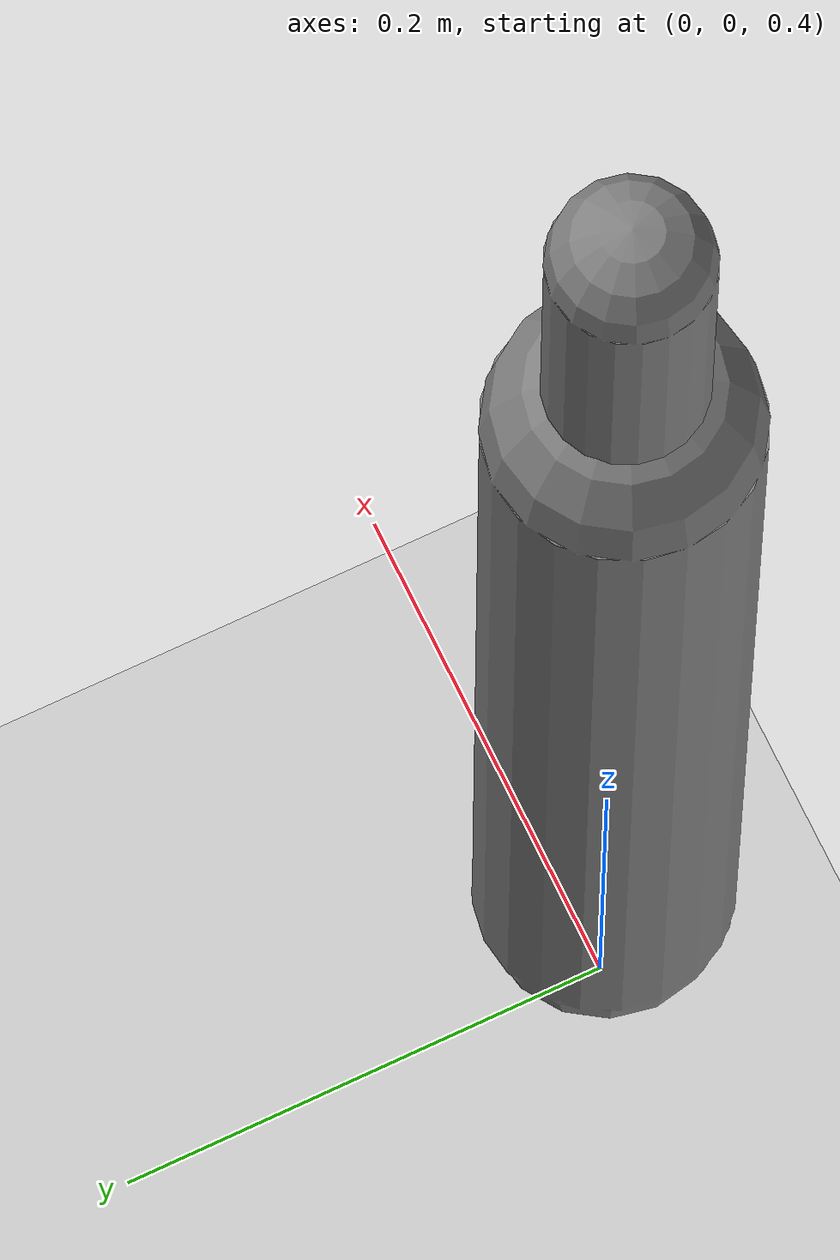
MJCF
<?xml version='1.0' encoding='UTF-8'?>
<mujoco model="RobotModel">
  <option gravity="0 0 -9.81" timestep="0.002" solver="CG" iterations="500" integrator="Euler"/>
  <worldbody>
    <geom name="Floor" type="plane" size="10 10 0.1" pos="0 0 0" rgba="0.8 0.8 0.8 1"/>
    <body name="Limb0" pos="0 0 0.5">
      <geom type="capsule" fromto="0 0 0 0 0 0.5" size="0.05" density="1000" contype="1" conaffinity="1"/>
      <body name="Limb0_47c5ab8f" pos="0 0 0.5">
        <geom type="capsule" fromto="0 0 0 0 0 0.14545573587542085" size="0.021553123987807142" density="500.0" contype="1" conaffinity="1"/>
        <joint name="Joint_Limb0_Limb0_47c5ab8f_0" type="hinge" axis="1 0 0" range="-60 60"/>
      </body>
      <body name="Limb1_47c5ab8f" pos="0 0 0.5">
        <geom type="capsule" fromto="0 0 0 0 0 0.15399276067552714" size="0.029387582614245237" density="500.0" contype="1" conaffinity="1"/>
        <joint name="Joint_Limb0_Limb1_47c5ab8f_0" type="hinge" axis="0 1 0" range="-60 60"/>
      </body>
    </body>
  </worldbody>
  <actuator>
    <position name="position_Actuator_Joint_Limb0_Limb0_47c5ab8f_0" joint="Joint_Limb0_Limb0_47c5ab8f_0" gear="1.0"/>
    <position name="position_Actuator_Joint_Limb0_Limb1_47c5ab8f_0" joint="Joint_Limb0_Limb1_47c5ab8f_0" gear="1.0"/>
  </actuator>
</mujoco>
